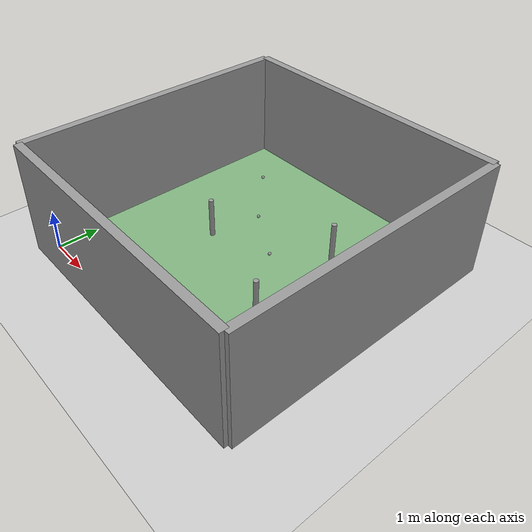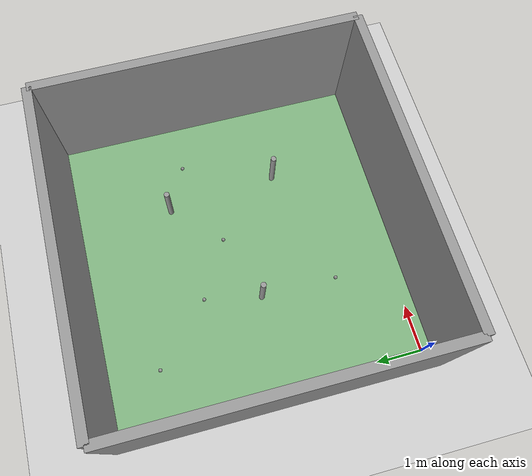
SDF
<sdf version="1.6">
 <world name="default">
  <light name="sun" type="directional">
   <pose>0 0 10 0 -0 0</pose>
   <diffuse>0.8 0.8 0.8 1</diffuse>
   <specular>0.2 0.2 0.2 1</specular>
   <attenuation>
    <range>1000</range>
    <constant>0.9</constant>
    <linear>0.01</linear>
    <quadratic>0.001</quadratic>
   </attenuation>
   <direction>-0.5 0.1 -0.9</direction>
  </light>
  <model name="ground_plane">
   <static>1</static>
   <link name="link">
    <collision name="collision">
     <geometry><plane><normal>0 0 1</normal><size>100 100</size></plane></geometry>
     <surface>
      <contact><collide_bitmask>65535</collide_bitmask></contact>
      <friction><ode><mu>100</mu><mu2>50</mu2></ode></friction>
     </surface>
    </collision>
    <visual name="visual">
     <cast_shadows>0</cast_shadows>
     <geometry><plane><normal>0 0 1</normal><size>100 100</size></plane></geometry>
     <material>
      <script><uri>file://media/materials/scripts/gazebo.material</uri><name>Gazebo/Grey</name></script>
     </material>
    </visual>
   </link>
  </model>
  <gravity>0 0 -9.8</gravity>
  <magnetic_field>6e-06 2.3e-05 -4.2e-05</magnetic_field>
  <atmosphere type="adiabatic"/>
  <physics name="default_physics" default="0" type="ode">
   <max_step_size>0.001</max_step_size>
   <real_time_factor>1</real_time_factor>
   <real_time_update_rate>1000</real_time_update_rate>
  </physics>
  <scene><ambient>0.4 0.4 0.4 1</ambient><background>0.7 0.7 0.7 1</background><shadows>1</shadows></scene>
  <audio><device>default</device></audio>
  <spherical_coordinates>
   <surface_model>EARTH_WGS84</surface_model>
   <latitude_deg>0</latitude_deg>
   <longitude_deg>0</longitude_deg>
   <elevation>0</elevation>
   <heading_deg>0</heading_deg>
  </spherical_coordinates>
  <model name="golf_ball_clone">
   <link name="link">
    <inertial>
     <mass>0.25</mass>
     <inertia><ixx>0.001</ixx><ixy>0</ixy><ixz>0</ixz><iyy>0.001</iyy><iyz>0</iyz><izz>0.001</izz></inertia>
    </inertial>
    <velocity_decay><linear>0</linear><angular>0</angular></velocity_decay>
    <visual name="visual">
     <geometry><sphere><radius>0.04</radius></sphere></geometry>
     <material>
      <script><uri>file://media/materials/scripts/gazebo.material</uri><name>Gazebo/Gray</name></script>
      <shader type="vertex"><normal_map>__default__</normal_map></shader>
      <ambient>0.3 0.3 0.3 1</ambient>
      <diffuse>0.7 0.7 0.7 1</diffuse>
      <specular>0.01 0.01 0.01 1</specular>
      <emissive>0 0 0 1</emissive>
     </material>
    </visual>
    <collision name="collision">
     <geometry><box><size>0.06 0.06 0.06</size></box></geometry>
     <surface>
      <friction>
       <ode><mu>30</mu><mu2>30</mu2><fdir1>0 0 0</fdir1><slip1>0</slip1><slip2>0</slip2></ode>
       <torsional>
        <coefficient>1</coefficient>
        <patch_radius>0</patch_radius>
        <surface_radius>0</surface_radius>
        <use_patch_radius>1</use_patch_radius>
        <ode><slip>0</slip></ode>
       </torsional>
      </friction>
      <bounce><restitution_coefficient>0</restitution_coefficient><threshold>1e+06</threshold></bounce>
      <contact>
       <collide_without_contact>0</collide_without_contact>
       <collide_without_contact_bitmask>1</collide_without_contact_bitmask>
       <collide_bitmask>1</collide_bitmask>
       <ode>
        <soft_cfm>0</soft_cfm>
        <soft_erp>0.2</soft_erp>
        <kp>1e+06</kp>
        <kd>100</kd>
        <max_vel>1</max_vel>
        <min_depth>0.002</min_depth>
       </ode>
       <bullet>
        <split_impulse>1</split_impulse>
        <split_impulse_penetration_threshold>-0.01</split_impulse_penetration_threshold>
        <soft_cfm>0</soft_cfm>
        <soft_erp>0.2</soft_erp>
        <kp>1e+06</kp>
        <kd>100</kd>
       </bullet>
      </contact>
     </surface>
    </collision>
   </link>
   <static>0</static>
   <pose>2 1.3 0.120235 0 -0 0</pose>
  </model>
  <plugin name="collision_map_creator" filename="/home/chaitya/catkin_ws/devel/lib/libcollision_map_creator.so"/>
  <model name="flagpole">
   <link name="link">
    <inertial>
     <mass>1</mass>
     <inertia><ixx>0.145833</ixx><ixy>0</ixy><ixz>0</ixz><iyy>0.145833</iyy><iyz>0</iyz><izz>0.125</izz></inertia>
    </inertial>
    <visual name="visual">
     <geometry><cylinder><radius>0.06</radius><length>1</length></cylinder></geometry>
     <material>
      <script><name>Gazebo/Grey</name><uri>file://media/materials/scripts/gazebo.material</uri></script>
      <shader type="vertex"><normal_map>__default__</normal_map></shader>
      <ambient>0.3 0.3 0.3 1</ambient>
      <diffuse>0.7 0.7 0.7 1</diffuse>
      <specular>0.01 0.01 0.01 1</specular>
      <emissive>0 0 0 1</emissive>
     </material>
    </visual>
    <collision name="collision">
     <geometry><cylinder><radius>0.06</radius><length>1</length></cylinder></geometry>
     <surface>
      <friction>
       <ode><mu>1</mu><mu2>1</mu2><fdir1>0 0 0</fdir1><slip1>0</slip1><slip2>0</slip2></ode>
       <torsional>
        <coefficient>1</coefficient>
        <patch_radius>0</patch_radius>
        <surface_radius>0</surface_radius>
        <use_patch_radius>1</use_patch_radius>
        <ode><slip>0</slip></ode>
       </torsional>
      </friction>
      <bounce><restitution_coefficient>0</restitution_coefficient><threshold>1e+06</threshold></bounce>
      <contact>
       <collide_without_contact>0</collide_without_contact>
       <collide_without_contact_bitmask>1</collide_without_contact_bitmask>
       <collide_bitmask>1</collide_bitmask>
       <ode>
        <soft_cfm>0</soft_cfm>
        <soft_erp>0.2</soft_erp>
        <kp>1e+13</kp>
        <kd>1</kd>
        <max_vel>0.01</max_vel>
        <min_depth>0</min_depth>
       </ode>
       <bullet>
        <split_impulse>1</split_impulse>
        <split_impulse_penetration_threshold>-0.01</split_impulse_penetration_threshold>
        <soft_cfm>0</soft_cfm>
        <soft_erp>0.2</soft_erp>
        <kp>1e+13</kp>
        <kd>1</kd>
       </bullet>
      </contact>
     </surface>
    </collision>
   </link>
   <static>0</static>
   <pose>1.99992 3.00018 0.550006 -8.8e-05 4.6e-05 -0.001195</pose>
  </model>
  <model name="flagpole_0">
   <link name="link">
    <inertial>
     <mass>1</mass>
     <inertia><ixx>0.145833</ixx><ixy>0</ixy><ixz>0</ixz><iyy>0.145833</iyy><iyz>0</iyz><izz>0.125</izz></inertia>
    </inertial>
    <visual name="visual">
     <geometry><cylinder><radius>0.06</radius><length>1</length></cylinder></geometry>
     <material>
      <script><name>Gazebo/Grey</name><uri>file://media/materials/scripts/gazebo.material</uri></script>
      <shader type="vertex"><normal_map>__default__</normal_map></shader>
      <ambient>0.3 0.3 0.3 1</ambient>
      <diffuse>0.7 0.7 0.7 1</diffuse>
      <specular>0.01 0.01 0.01 1</specular>
      <emissive>0 0 0 1</emissive>
     </material>
    </visual>
    <collision name="collision">
     <geometry><cylinder><radius>0.06</radius><length>1</length></cylinder></geometry>
     <surface>
      <friction>
       <ode><mu>1</mu><mu2>1</mu2><fdir1>0 0 0</fdir1><slip1>0</slip1><slip2>0</slip2></ode>
       <torsional>
        <coefficient>1</coefficient>
        <patch_radius>0</patch_radius>
        <surface_radius>0</surface_radius>
        <use_patch_radius>1</use_patch_radius>
        <ode><slip>0</slip></ode>
       </torsional>
      </friction>
      <bounce><restitution_coefficient>0</restitution_coefficient><threshold>1e+06</threshold></bounce>
      <contact>
       <collide_without_contact>0</collide_without_contact>
       <collide_without_contact_bitmask>1</collide_without_contact_bitmask>
       <collide_bitmask>1</collide_bitmask>
       <ode>
        <soft_cfm>0</soft_cfm>
        <soft_erp>0.2</soft_erp>
        <kp>1e+13</kp>
        <kd>1</kd>
        <max_vel>0.01</max_vel>
        <min_depth>0</min_depth>
       </ode>
       <bullet>
        <split_impulse>1</split_impulse>
        <split_impulse_penetration_threshold>-0.01</split_impulse_penetration_threshold>
        <soft_cfm>0</soft_cfm>
        <soft_erp>0.2</soft_erp>
        <kp>1e+13</kp>
        <kd>1</kd>
       </bullet>
      </contact>
     </surface>
    </collision>
   </link>
   <static>0</static>
   <pose>4.74995 2.00019 0.549999 -5e-05 2.2e-05 0.435566</pose>
  </model>
  <model name="golf_ball_clone_clone">
   <link name="link">
    <inertial>
     <mass>0.25</mass>
     <inertia><ixx>0.001</ixx><ixy>0</ixy><ixz>0</ixz><iyy>0.001</iyy><iyz>0</iyz><izz>0.001</izz></inertia>
    </inertial>
    <velocity_decay><linear>0</linear><angular>0</angular></velocity_decay>
    <visual name="visual">
     <geometry><sphere><radius>0.04</radius></sphere></geometry>
     <material>
      <script><uri>file://media/materials/scripts/gazebo.material</uri><name>Gazebo/Gray</name></script>
      <shader type="vertex"><normal_map>__default__</normal_map></shader>
      <ambient>0.3 0.3 0.3 1</ambient>
      <diffuse>0.7 0.7 0.7 1</diffuse>
      <specular>0.01 0.01 0.01 1</specular>
      <emissive>0 0 0 1</emissive>
     </material>
    </visual>
    <collision name="collision">
     <geometry><box><size>0.06 0.06 0.06</size></box></geometry>
     <surface>
      <friction>
       <ode><mu>30</mu><mu2>30</mu2><fdir1>0 0 0</fdir1><slip1>0</slip1><slip2>0</slip2></ode>
       <torsional>
        <coefficient>1</coefficient>
        <patch_radius>0</patch_radius>
        <surface_radius>0</surface_radius>
        <use_patch_radius>1</use_patch_radius>
        <ode><slip>0</slip></ode>
       </torsional>
      </friction>
      <bounce><restitution_coefficient>0</restitution_coefficient><threshold>1e+06</threshold></bounce>
      <contact>
       <collide_without_contact>0</collide_without_contact>
       <collide_without_contact_bitmask>1</collide_without_contact_bitmask>
       <collide_bitmask>1</collide_bitmask>
       <ode>
        <soft_cfm>0</soft_cfm>
        <soft_erp>0.2</soft_erp>
        <kp>1e+06</kp>
        <kd>100</kd>
        <max_vel>1</max_vel>
        <min_depth>0.002</min_depth>
       </ode>
       <bullet>
        <split_impulse>1</split_impulse>
        <split_impulse_penetration_threshold>-0.01</split_impulse_penetration_threshold>
        <soft_cfm>0</soft_cfm>
        <soft_erp>0.2</soft_erp>
        <kp>1e+06</kp>
        <kd>100</kd>
       </bullet>
      </contact>
     </surface>
    </collision>
   </link>
   <static>0</static>
   <pose>2.25 4.25 0.119255 0 -0 0</pose>
  </model>
  <model name="golf_plane_7m">
   <link name="link">
    <inertial>
     <mass>1</mass>
     <inertia><ixx>1</ixx><ixy>0</ixy><ixz>0</ixz><iyy>1</iyy><iyz>0</iyz><izz>1</izz></inertia>
    </inertial>
    <visual name="visual">
     <cast_shadows>0</cast_shadows>
     <geometry><box><size>7 7 0.1</size></box></geometry>
     <material>
      <shader type="vertex"><normal_map>__default__</normal_map></shader>
      <ambient>0.5 0.7 0.5 1</ambient>
      <diffuse>0.5 0.7 0.5 1</diffuse>
      <specular>0.2 0.7 0.2 1</specular>
      <emissive>0 0.7 0 1</emissive>
      <script><name>ModelPreview_1::link::visual_MATERIAL_</name><uri>__default__</uri></script>
     </material>
    </visual>
    <collision name="collision">
     <geometry><box><size>7 7 0.1</size></box></geometry>
     <surface>
      <friction>
       <ode><mu>1</mu><mu2>1</mu2><fdir1>0 0 0</fdir1><slip1>0</slip1><slip2>0</slip2></ode>
       <torsional>
        <coefficient>1</coefficient>
        <patch_radius>0</patch_radius>
        <surface_radius>0</surface_radius>
        <use_patch_radius>1</use_patch_radius>
        <ode><slip>0</slip></ode>
       </torsional>
      </friction>
      <bounce><restitution_coefficient>0</restitution_coefficient><threshold>1e+06</threshold></bounce>
      <contact>
       <collide_without_contact>0</collide_without_contact>
       <collide_without_contact_bitmask>1</collide_without_contact_bitmask>
       <collide_bitmask>1</collide_bitmask>
       <ode>
        <soft_cfm>0</soft_cfm>
        <soft_erp>0.2</soft_erp>
        <kp>1e+13</kp>
        <kd>1</kd>
        <max_vel>0.01</max_vel>
        <min_depth>0</min_depth>
       </ode>
       <bullet>
        <split_impulse>1</split_impulse>
        <split_impulse_penetration_threshold>-0.01</split_impulse_penetration_threshold>
        <soft_cfm>0</soft_cfm>
        <soft_erp>0.2</soft_erp>
        <kp>1e+13</kp>
        <kd>1</kd>
       </bullet>
      </contact>
     </surface>
    </collision>
   </link>
   <static>1</static>
   <pose>3.2 3.2 0 0 -0 0</pose>
  </model>
  <model name="flagpole_clone">
   <link name="link">
    <inertial>
     <mass>1</mass>
     <inertia><ixx>0.145833</ixx><ixy>0</ixy><ixz>0</ixz><iyy>0.145833</iyy><iyz>0</iyz><izz>0.125</izz></inertia>
    </inertial>
    <visual name="visual">
     <geometry><cylinder><radius>0.06</radius><length>1</length></cylinder></geometry>
     <material>
      <script><name>Gazebo/Grey</name><uri>file://media/materials/scripts/gazebo.material</uri></script>
      <shader type="vertex"><normal_map>__default__</normal_map></shader>
      <ambient>0.3 0.3 0.3 1</ambient>
      <diffuse>0.7 0.7 0.7 1</diffuse>
      <specular>0.01 0.01 0.01 1</specular>
      <emissive>0 0 0 1</emissive>
     </material>
    </visual>
    <collision name="collision">
     <geometry><cylinder><radius>0.06</radius><length>1</length></cylinder></geometry>
     <surface>
      <friction>
       <ode><mu>1</mu><mu2>1</mu2><fdir1>0 0 0</fdir1><slip1>0</slip1><slip2>0</slip2></ode>
       <torsional>
        <coefficient>1</coefficient>
        <patch_radius>0</patch_radius>
        <surface_radius>0</surface_radius>
        <use_patch_radius>1</use_patch_radius>
        <ode><slip>0</slip></ode>
       </torsional>
      </friction>
      <bounce><restitution_coefficient>0</restitution_coefficient><threshold>1e+06</threshold></bounce>
      <contact>
       <collide_without_contact>0</collide_without_contact>
       <collide_without_contact_bitmask>1</collide_without_contact_bitmask>
       <collide_bitmask>1</collide_bitmask>
       <ode>
        <soft_cfm>0</soft_cfm>
        <soft_erp>0.2</soft_erp>
        <kp>1e+13</kp>
        <kd>1</kd>
        <max_vel>0.01</max_vel>
        <min_depth>0</min_depth>
       </ode>
       <bullet>
        <split_impulse>1</split_impulse>
        <split_impulse_penetration_threshold>-0.01</split_impulse_penetration_threshold>
        <soft_cfm>0</soft_cfm>
        <soft_erp>0.2</soft_erp>
        <kp>1e+13</kp>
        <kd>1</kd>
       </bullet>
      </contact>
     </surface>
    </collision>
   </link>
   <static>0</static>
   <pose>4.4999 4.50017 0.549999 -6.2e-05 2.8e-05 -0.001614</pose>
  </model>
  <model name="golf_ball_clone_clone_0">
   <link name="link">
    <inertial>
     <mass>0.25</mass>
     <inertia><ixx>0.001</ixx><ixy>0</ixy><ixz>0</ixz><iyy>0.001</iyy><iyz>0</iyz><izz>0.001</izz></inertia>
    </inertial>
    <velocity_decay><linear>0</linear><angular>0</angular></velocity_decay>
    <visual name="visual">
     <geometry><sphere><radius>0.04</radius></sphere></geometry>
     <material>
      <script><uri>file://media/materials/scripts/gazebo.material</uri><name>Gazebo/Gray</name></script>
      <shader type="vertex"><normal_map>__default__</normal_map></shader>
      <ambient>0.3 0.3 0.3 1</ambient>
      <diffuse>0.7 0.7 0.7 1</diffuse>
      <specular>0.01 0.01 0.01 1</specular>
      <emissive>0 0 0 1</emissive>
     </material>
    </visual>
    <collision name="collision">
     <geometry><box><size>0.06 0.06 0.06</size></box></geometry>
     <surface>
      <friction>
       <ode><mu>30</mu><mu2>30</mu2><fdir1>0 0 0</fdir1><slip1>0</slip1><slip2>0</slip2></ode>
       <torsional>
        <coefficient>1</coefficient>
        <patch_radius>0</patch_radius>
        <surface_radius>0</surface_radius>
        <use_patch_radius>1</use_patch_radius>
        <ode><slip>0</slip></ode>
       </torsional>
      </friction>
      <bounce><restitution_coefficient>0</restitution_coefficient><threshold>1e+06</threshold></bounce>
      <contact>
       <collide_without_contact>0</collide_without_contact>
       <collide_without_contact_bitmask>1</collide_without_contact_bitmask>
       <collide_bitmask>1</collide_bitmask>
       <ode>
        <soft_cfm>0</soft_cfm>
        <soft_erp>0.2</soft_erp>
        <kp>1e+06</kp>
        <kd>100</kd>
        <max_vel>1</max_vel>
        <min_depth>0.002</min_depth>
       </ode>
       <bullet>
        <split_impulse>1</split_impulse>
        <split_impulse_penetration_threshold>-0.01</split_impulse_penetration_threshold>
        <soft_cfm>0</soft_cfm>
        <soft_erp>0.2</soft_erp>
        <kp>1e+06</kp>
        <kd>100</kd>
       </bullet>
      </contact>
     </surface>
    </collision>
   </link>
   <static>0</static>
   <pose>3.5 3.5 0.119255 0 -0 0</pose>
  </model>
  <model name="golf_ball_clone_clone_1">
   <link name="link">
    <inertial>
     <mass>0.25</mass>
     <inertia><ixx>0.001</ixx><ixy>0</ixy><ixz>0</ixz><iyy>0.001</iyy><iyz>0</iyz><izz>0.001</izz></inertia>
    </inertial>
    <velocity_decay><linear>0</linear><angular>0</angular></velocity_decay>
    <visual name="visual">
     <geometry><sphere><radius>0.04</radius></sphere></geometry>
     <material>
      <script><uri>file://media/materials/scripts/gazebo.material</uri><name>Gazebo/Gray</name></script>
      <shader type="vertex"><normal_map>__default__</normal_map></shader>
      <ambient>0.3 0.3 0.3 1</ambient>
      <diffuse>0.7 0.7 0.7 1</diffuse>
      <specular>0.01 0.01 0.01 1</specular>
      <emissive>0 0 0 1</emissive>
     </material>
    </visual>
    <collision name="collision">
     <geometry><box><size>0.06 0.06 0.06</size></box></geometry>
     <surface>
      <friction>
       <ode><mu>30</mu><mu2>30</mu2><fdir1>0 0 0</fdir1><slip1>0</slip1><slip2>0</slip2></ode>
       <torsional>
        <coefficient>1</coefficient>
        <patch_radius>0</patch_radius>
        <surface_radius>0</surface_radius>
        <use_patch_radius>1</use_patch_radius>
        <ode><slip>0</slip></ode>
       </torsional>
      </friction>
      <bounce><restitution_coefficient>0</restitution_coefficient><threshold>1e+06</threshold></bounce>
      <contact>
       <collide_without_contact>0</collide_without_contact>
       <collide_without_contact_bitmask>1</collide_without_contact_bitmask>
       <collide_bitmask>1</collide_bitmask>
       <ode>
        <soft_cfm>0</soft_cfm>
        <soft_erp>0.2</soft_erp>
        <kp>1e+06</kp>
        <kd>100</kd>
        <max_vel>1</max_vel>
        <min_depth>0.002</min_depth>
       </ode>
       <bullet>
        <split_impulse>1</split_impulse>
        <split_impulse_penetration_threshold>-0.01</split_impulse_penetration_threshold>
        <soft_cfm>0</soft_cfm>
        <soft_erp>0.2</soft_erp>
        <kp>1e+06</kp>
        <kd>100</kd>
       </bullet>
      </contact>
     </surface>
    </collision>
   </link>
   <static>0</static>
   <pose>5.5 4 0.119255 0 -0 0</pose>
  </model>
  <model name="golf_ball_clone_clone_2">
   <link name="link">
    <inertial>
     <mass>0.25</mass>
     <inertia><ixx>0.001</ixx><ixy>0</ixy><ixz>0</ixz><iyy>0.001</iyy><iyz>0</iyz><izz>0.001</izz></inertia>
    </inertial>
    <velocity_decay><linear>0</linear><angular>0</angular></velocity_decay>
    <visual name="visual">
     <geometry><sphere><radius>0.04</radius></sphere></geometry>
     <material>
      <script><uri>file://media/materials/scripts/gazebo.material</uri><name>Gazebo/Gray</name></script>
      <shader type="vertex"><normal_map>__default__</normal_map></shader>
      <ambient>0.3 0.3 0.3 1</ambient>
      <diffuse>0.7 0.7 0.7 1</diffuse>
      <specular>0.01 0.01 0.01 1</specular>
      <emissive>0 0 0 1</emissive>
     </material>
    </visual>
    <collision name="collision">
     <geometry><box><size>0.06 0.06 0.06</size></box></geometry>
     <surface>
      <friction>
       <ode><mu>30</mu><mu2>30</mu2><fdir1>0 0 0</fdir1><slip1>0</slip1><slip2>0</slip2></ode>
       <torsional>
        <coefficient>1</coefficient>
        <patch_radius>0</patch_radius>
        <surface_radius>0</surface_radius>
        <use_patch_radius>1</use_patch_radius>
        <ode><slip>0</slip></ode>
       </torsional>
      </friction>
      <bounce><restitution_coefficient>0</restitution_coefficient><threshold>1e+06</threshold></bounce>
      <contact>
       <collide_without_contact>0</collide_without_contact>
       <collide_without_contact_bitmask>1</collide_without_contact_bitmask>
       <collide_bitmask>1</collide_bitmask>
       <ode>
        <soft_cfm>0</soft_cfm>
        <soft_erp>0.2</soft_erp>
        <kp>1e+06</kp>
        <kd>100</kd>
        <max_vel>1</max_vel>
        <min_depth>0.002</min_depth>
       </ode>
       <bullet>
        <split_impulse>1</split_impulse>
        <split_impulse_penetration_threshold>-0.01</split_impulse_penetration_threshold>
        <soft_cfm>0</soft_cfm>
        <soft_erp>0.2</soft_erp>
        <kp>1e+06</kp>
        <kd>100</kd>
       </bullet>
      </contact>
     </surface>
    </collision>
   </link>
   <static>0</static>
   <pose>1 5.5 0.119255 0 -0 0</pose>
  </model>
  <model name="grey_wall">
   <link name="link">
    <pose>0 0 1.4 0 -0 0</pose>
    <inertial>
     <mass>1</mass>
     <inertia><ixx>1</ixx><ixy>0</ixy><ixz>0</ixz><iyy>1</iyy><iyz>0</iyz><izz>1</izz></inertia>
    </inertial>
    <visual name="visual">
     <cast_shadows>0</cast_shadows>
     <geometry><box><size>7 0.2 2.8</size></box></geometry>
     <material>
      <script>
       <uri>model://grey_wall/materials/scripts</uri>
       <uri>model://grey_wall/materials/textures</uri>
       <name>vrc/grey_wall</name>
      </script>
      <shader type="vertex"><normal_map>__default__</normal_map></shader>
      <ambient>1 1 1 1</ambient>
      <diffuse>1 1 1 1</diffuse>
      <specular>0 0 0 1</specular>
      <emissive>0 0 0 1</emissive>
     </material>
    </visual>
    <collision name="collision">
     <geometry><box><size>7 0.2 2.8</size></box></geometry>
     <surface>
      <friction>
       <ode><mu>1</mu><mu2>1</mu2><fdir1>0 0 0</fdir1><slip1>0</slip1><slip2>0</slip2></ode>
       <torsional>
        <coefficient>1</coefficient>
        <patch_radius>0</patch_radius>
        <surface_radius>0</surface_radius>
        <use_patch_radius>1</use_patch_radius>
        <ode><slip>0</slip></ode>
       </torsional>
      </friction>
      <bounce><restitution_coefficient>0</restitution_coefficient><threshold>1e+06</threshold></bounce>
      <contact>
       <collide_without_contact>0</collide_without_contact>
       <collide_without_contact_bitmask>1</collide_without_contact_bitmask>
       <collide_bitmask>1</collide_bitmask>
       <ode>
        <soft_cfm>0</soft_cfm>
        <soft_erp>0.2</soft_erp>
        <kp>1e+13</kp>
        <kd>1</kd>
        <max_vel>0.01</max_vel>
        <min_depth>0</min_depth>
       </ode>
       <bullet>
        <split_impulse>1</split_impulse>
        <split_impulse_penetration_threshold>-0.01</split_impulse_penetration_threshold>
        <soft_cfm>0</soft_cfm>
        <soft_erp>0.2</soft_erp>
        <kp>1e+13</kp>
        <kd>1</kd>
       </bullet>
      </contact>
     </surface>
    </collision>
   </link>
   <static>1</static>
   <pose>3.2 -0.3 0 0 -0 0</pose>
  </model>
  <model name="grey_wall_clone">
   <link name="link">
    <pose>0 0 1.4 0 -0 0</pose>
    <inertial>
     <mass>1</mass>
     <inertia><ixx>1</ixx><ixy>0</ixy><ixz>0</ixz><iyy>1</iyy><iyz>0</iyz><izz>1</izz></inertia>
    </inertial>
    <visual name="visual">
     <cast_shadows>0</cast_shadows>
     <geometry><box><size>7 0.2 2.8</size></box></geometry>
     <material>
      <script>
       <uri>model://grey_wall/materials/scripts</uri>
       <uri>model://grey_wall/materials/textures</uri>
       <name>vrc/grey_wall</name>
      </script>
      <shader type="vertex"><normal_map>__default__</normal_map></shader>
      <ambient>1 1 1 1</ambient>
      <diffuse>1 1 1 1</diffuse>
      <specular>0 0 0 1</specular>
      <emissive>0 0 0 1</emissive>
     </material>
    </visual>
    <collision name="collision">
     <geometry><box><size>7 0.2 2.8</size></box></geometry>
     <surface>
      <friction>
       <ode><mu>1</mu><mu2>1</mu2><fdir1>0 0 0</fdir1><slip1>0</slip1><slip2>0</slip2></ode>
       <torsional>
        <coefficient>1</coefficient>
        <patch_radius>0</patch_radius>
        <surface_radius>0</surface_radius>
        <use_patch_radius>1</use_patch_radius>
        <ode><slip>0</slip></ode>
       </torsional>
      </friction>
      <bounce><restitution_coefficient>0</restitution_coefficient><threshold>1e+06</threshold></bounce>
      <contact>
       <collide_without_contact>0</collide_without_contact>
       <collide_without_contact_bitmask>1</collide_without_contact_bitmask>
       <collide_bitmask>1</collide_bitmask>
       <ode>
        <soft_cfm>0</soft_cfm>
        <soft_erp>0.2</soft_erp>
        <kp>1e+13</kp>
        <kd>1</kd>
        <max_vel>0.01</max_vel>
        <min_depth>0</min_depth>
       </ode>
       <bullet>
        <split_impulse>1</split_impulse>
        <split_impulse_penetration_threshold>-0.01</split_impulse_penetration_threshold>
        <soft_cfm>0</soft_cfm>
        <soft_erp>0.2</soft_erp>
        <kp>1e+13</kp>
        <kd>1</kd>
       </bullet>
      </contact>
     </surface>
    </collision>
   </link>
   <static>1</static>
   <pose>3.2 6.7 0 0 -0 0</pose>
  </model>
  <model name="grey_wall_clone_0">
   <link name="link">
    <pose>0 0 1.4 0 -0 0</pose>
    <inertial>
     <mass>1</mass>
     <inertia><ixx>1</ixx><ixy>0</ixy><ixz>0</ixz><iyy>1</iyy><iyz>0</iyz><izz>1</izz></inertia>
    </inertial>
    <visual name="visual">
     <cast_shadows>0</cast_shadows>
     <geometry><box><size>7 0.2 2.8</size></box></geometry>
     <material>
      <script>
       <uri>model://grey_wall/materials/scripts</uri>
       <uri>model://grey_wall/materials/textures</uri>
       <name>vrc/grey_wall</name>
      </script>
      <shader type="vertex"><normal_map>__default__</normal_map></shader>
      <ambient>1 1 1 1</ambient>
      <diffuse>1 1 1 1</diffuse>
      <specular>0 0 0 1</specular>
      <emissive>0 0 0 1</emissive>
     </material>
    </visual>
    <collision name="collision">
     <geometry><box><size>7 0.2 2.8</size></box></geometry>
     <surface>
      <friction>
       <ode><mu>1</mu><mu2>1</mu2><fdir1>0 0 0</fdir1><slip1>0</slip1><slip2>0</slip2></ode>
       <torsional>
        <coefficient>1</coefficient>
        <patch_radius>0</patch_radius>
        <surface_radius>0</surface_radius>
        <use_patch_radius>1</use_patch_radius>
        <ode><slip>0</slip></ode>
       </torsional>
      </friction>
      <bounce><restitution_coefficient>0</restitution_coefficient><threshold>1e+06</threshold></bounce>
      <contact>
       <collide_without_contact>0</collide_without_contact>
       <collide_without_contact_bitmask>1</collide_without_contact_bitmask>
       <collide_bitmask>1</collide_bitmask>
       <ode>
        <soft_cfm>0</soft_cfm>
        <soft_erp>0.2</soft_erp>
        <kp>1e+13</kp>
        <kd>1</kd>
        <max_vel>0.01</max_vel>
        <min_depth>0</min_depth>
       </ode>
       <bullet>
        <split_impulse>1</split_impulse>
        <split_impulse_penetration_threshold>-0.01</split_impulse_penetration_threshold>
        <soft_cfm>0</soft_cfm>
        <soft_erp>0.2</soft_erp>
        <kp>1e+13</kp>
        <kd>1</kd>
       </bullet>
      </contact>
     </surface>
    </collision>
   </link>
   <static>1</static>
   <pose>-0.3 3.2 0 0 -0 1.5707</pose>
  </model>
  <model name="grey_wall_clone_0_clone">
   <link name="link">
    <pose>0 0 1.4 0 -0 0</pose>
    <inertial>
     <mass>1</mass>
     <inertia><ixx>1</ixx><ixy>0</ixy><ixz>0</ixz><iyy>1</iyy><iyz>0</iyz><izz>1</izz></inertia>
    </inertial>
    <visual name="visual">
     <cast_shadows>0</cast_shadows>
     <geometry><box><size>7 0.2 2.8</size></box></geometry>
     <material>
      <script>
       <uri>model://grey_wall/materials/scripts</uri>
       <uri>model://grey_wall/materials/textures</uri>
       <name>vrc/grey_wall</name>
      </script>
      <shader type="vertex"><normal_map>__default__</normal_map></shader>
      <ambient>1 1 1 1</ambient>
      <diffuse>1 1 1 1</diffuse>
      <specular>0 0 0 1</specular>
      <emissive>0 0 0 1</emissive>
     </material>
    </visual>
    <collision name="collision">
     <geometry><box><size>7 0.2 2.8</size></box></geometry>
     <surface>
      <friction>
       <ode><mu>1</mu><mu2>1</mu2><fdir1>0 0 0</fdir1><slip1>0</slip1><slip2>0</slip2></ode>
       <torsional>
        <coefficient>1</coefficient>
        <patch_radius>0</patch_radius>
        <surface_radius>0</surface_radius>
        <use_patch_radius>1</use_patch_radius>
        <ode><slip>0</slip></ode>
       </torsional>
      </friction>
      <bounce><restitution_coefficient>0</restitution_coefficient><threshold>1e+06</threshold></bounce>
      <contact>
       <collide_without_contact>0</collide_without_contact>
       <collide_without_contact_bitmask>1</collide_without_contact_bitmask>
       <collide_bitmask>1</collide_bitmask>
       <ode>
        <soft_cfm>0</soft_cfm>
        <soft_erp>0.2</soft_erp>
        <kp>1e+13</kp>
        <kd>1</kd>
        <max_vel>0.01</max_vel>
        <min_depth>0</min_depth>
       </ode>
       <bullet>
        <split_impulse>1</split_impulse>
        <split_impulse_penetration_threshold>-0.01</split_impulse_penetration_threshold>
        <soft_cfm>0</soft_cfm>
        <soft_erp>0.2</soft_erp>
        <kp>1e+13</kp>
        <kd>1</kd>
       </bullet>
      </contact>
     </surface>
    </collision>
   </link>
   <static>1</static>
   <pose>6.7 3.2 0 0 -0 1.5707</pose>
  </model>
 </world>
</sdf>
